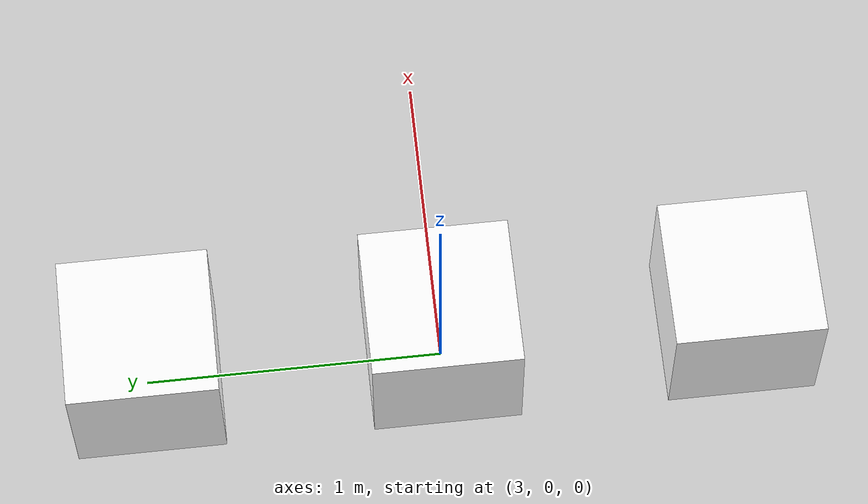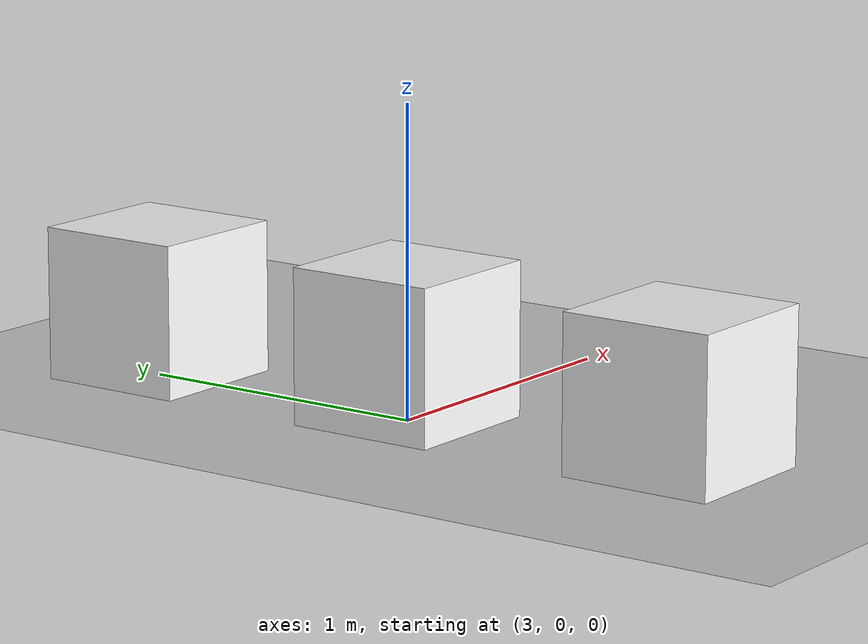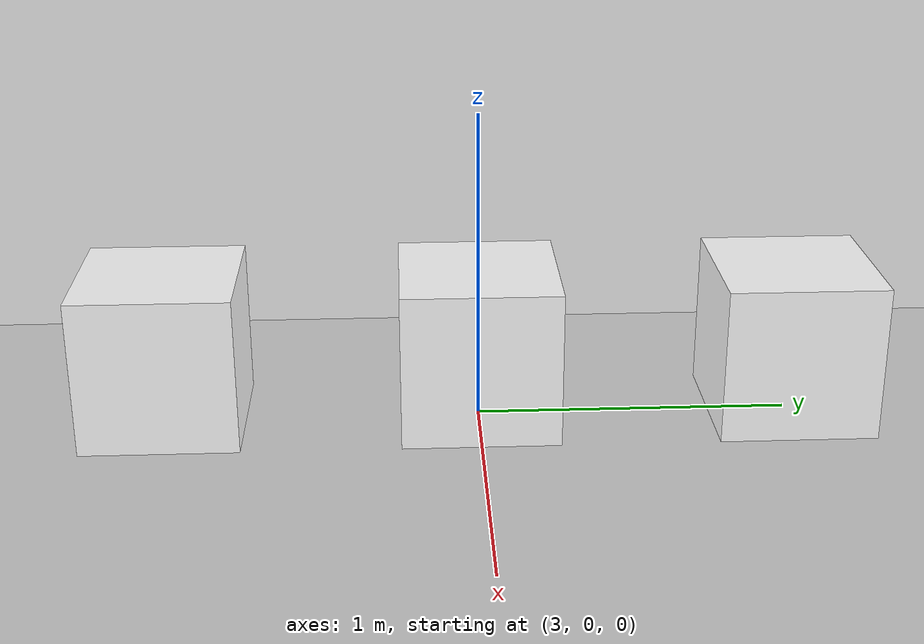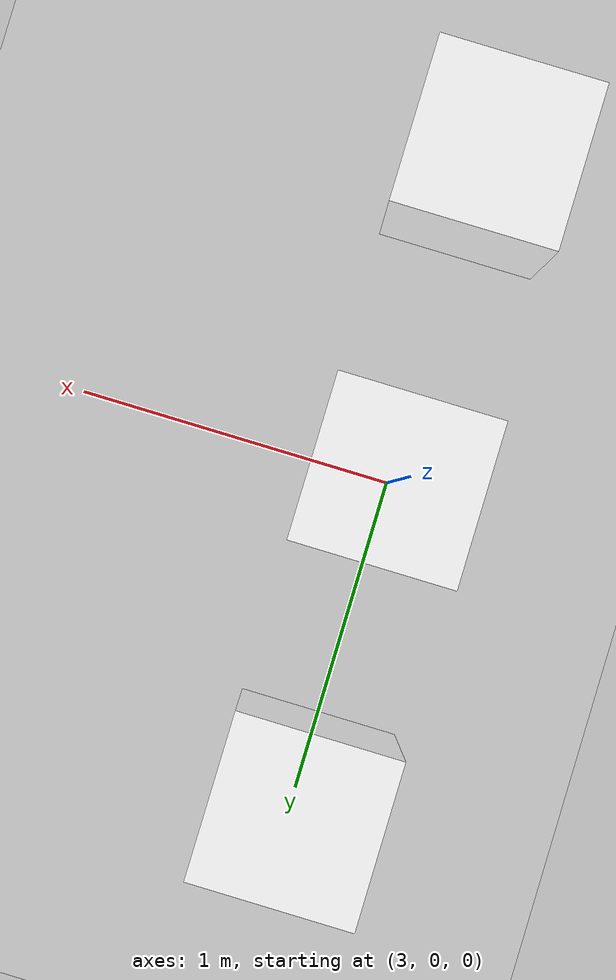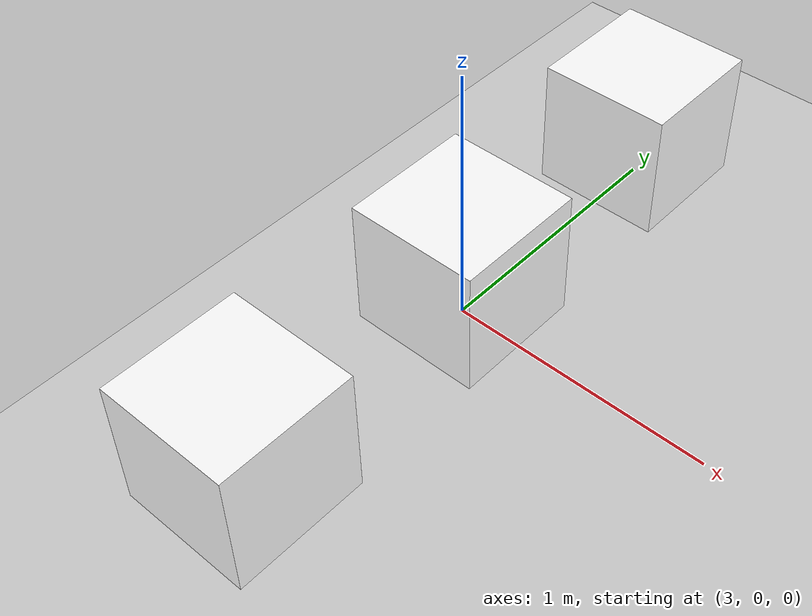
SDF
<?xml version="1.0" ?>
<sdf version="1.6">
  <world name="empty">
    <physics name="1ms" type="ignored">
      <max_step_size>0.001</max_step_size>
      <real_time_factor>1.0</real_time_factor>
    </physics>
    <plugin filename="gz-sim-physics-system" name="gz::sim::systems::Physics">
    </plugin>
    <plugin filename="gz-sim-user-commands-system" name="gz::sim::systems::UserCommands">
    </plugin>
    <plugin filename="gz-sim-scene-broadcaster-system" name="gz::sim::systems::SceneBroadcaster">
    </plugin>
    <plugin filename="gz-sim-contact-system" name="gz::sim::systems::Contact">
    </plugin>
    <plugin filename="gz-sim-sensors-system" name="gz::sim::systems::Sensors">
      <render_engine>ogre2</render_engine>
    </plugin>
    <plugin filename="gz-sim-imu-system" name="gz::sim::systems::Imu">
    </plugin>

    <light type="directional" name="sun">
      <cast_shadows>false</cast_shadows>
      <pose>0 0 10 0 0 0</pose>
      <diffuse>0.8 0.8 0.8 1</diffuse>
      <specular>0.2 0.2 0.2 1</specular>
      <attenuation>
        <range>1000</range>
        <constant>0.9</constant>
        <linear>0.01</linear>
        <quadratic>0.001</quadratic>
      </attenuation>
      <direction>-0.5 0.1 -0.9</direction>
    </light>

    <model name="ground_plane">
      <static>true</static>
      <link name="link">
        <collision name="collision">
          <geometry>
            <plane>
              <normal>0 0 1</normal>
              <size>100 100</size>
            </plane>
          </geometry>
        </collision>
        <visual name="visual">
          <geometry>
            <plane>
              <normal>0 0 1</normal>
              <size>100 100</size>
            </plane>
          </geometry>
          <material>
            <ambient>0.8 0.8 0.8 1</ambient>
            <diffuse>0.8 0.8 0.8 1</diffuse>
            <specular>0.8 0.8 0.8 1</specular>
          </material>
        </visual>
      </link>
    </model>

    <include>
      <uri>model://Apriltag36h11_00</uri>
      <pose>3 1 0.25 0 0 0</pose>
      <static>true</static>
    </include>

    <include>
      <uri>model://Apriltag36h11_01</uri>
      <pose>3 0 0.25 0 0 0</pose>
      <static>true</static>
    </include>

    <include>
      <uri>model://Apriltag36h11_02</uri>
      <pose>3 -1 0.25 0 0 0</pose>
      <static>true</static>
    </include>

  </world>
</sdf>

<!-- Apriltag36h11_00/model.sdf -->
<sdf version='1.6'>
    <model name='Apriltag36h11_00'>        <!--custom_ground_plane_box-->
        <link name='link'>

            <inertial>
                <pose>0 0 0 0 0 0</pose>
                <mass>100</mass>
                <inertia>
                    <ixx>3.33341666667e+3</ixx>
                    <ixy>0.0</ixy>
                    <ixz>0.0</ixz>
                    <iyy>3.33341666667e+3</iyy>
                    <iyz>0.0</iyz>
                    <izz>6.66666666667e+3</izz>
                </inertia>
            </inertial>

            <collision name="collision">
                <geometry>
                    <box>
                        <size>0.5 0.5 0.5</size>
                    </box>
                </geometry>
                <surface>
                    <friction>
                        <ode>
                            <mu>0</mu>
                            <mu2>0</mu2>
                        </ode>
                    </friction>
                </surface>
            </collision>

            <visual name='visual'>
                <geometry>
                    <box>
                        <size>0.5 0.5 0.5</size>
                    </box>
                </geometry>
                <material>
                    <diffuse>1 1 1 1</diffuse>
                    <pbr>
                        <metal>
                            <albedo_map>materials/textures/Apriltag36h11_00.jpg</albedo_map>
                            <metalness>0.0</metalness>
                        </metal>
                    </pbr>
                </material>
            </visual>
        </link>
    </model>
</sdf>

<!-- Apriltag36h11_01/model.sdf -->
<sdf version='1.6'>
    <model name='Apriltag36h11_01'>        <!--custom_ground_plane_box-->
        <link name='link'>

            <inertial>
                <pose>0 0 0 0 0 0</pose>
                <mass>100</mass>
                <inertia>
                    <ixx>3.33341666667e+3</ixx>
                    <ixy>0.0</ixy>
                    <ixz>0.0</ixz>
                    <iyy>3.33341666667e+3</iyy>
                    <iyz>0.0</iyz>
                    <izz>6.66666666667e+3</izz>
                </inertia>
            </inertial>

            <collision name="collision">
                <geometry>
                    <box>
                        <size>0.5 0.5 0.5</size>
                    </box>
                </geometry>
                <surface>
                    <friction>
                        <ode>
                            <mu>0</mu>
                            <mu2>0</mu2>
                        </ode>
                    </friction>
                </surface>
            </collision>

            <visual name='visual'>
                <geometry>
                    <box>
                        <size>0.5 0.5 0.5</size>
                    </box>
                </geometry>
                <material>
                    <diffuse>1 1 1 1</diffuse>
                    <pbr>
                        <metal>
                            <albedo_map>materials/textures/Apriltag36h11_01.jpg</albedo_map>
                            <metalness>0.0</metalness>
                        </metal>
                    </pbr>
                </material>
            </visual>
        </link>
    </model>
</sdf>

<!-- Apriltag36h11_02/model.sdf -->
<sdf version='1.6'>
    <model name='Apriltag36h11_02'>        <!--custom_ground_plane_box-->
        <link name='link'>

            <inertial>
                <pose>0 0 0 0 0 0</pose>
                <mass>100</mass>
                <inertia>
                    <ixx>3.33341666667e+3</ixx>
                    <ixy>0.0</ixy>
                    <ixz>0.0</ixz>
                    <iyy>3.33341666667e+3</iyy>
                    <iyz>0.0</iyz>
                    <izz>6.66666666667e+3</izz>
                </inertia>
            </inertial>

            <collision name="collision">
                <geometry>
                    <box>
                        <size>0.5 0.5 0.5</size>
                    </box>
                </geometry>
                <surface>
                    <friction>
                        <ode>
                            <mu>0</mu>
                            <mu2>0</mu2>
                        </ode>
                    </friction>
                </surface>
            </collision>

            <visual name='visual'>
                <geometry>
                    <box>
                        <size>0.5 0.5 0.5</size>
                    </box>
                </geometry>
                <material>
                    <diffuse>1 1 1 1</diffuse>
                    <pbr>
                        <metal>
                            <albedo_map>materials/textures/Apriltag36h11_02.jpg</albedo_map>
                            <metalness>0.0</metalness>
                        </metal>
                    </pbr>
                </material>
            </visual>
        </link>
    </model>
</sdf>
